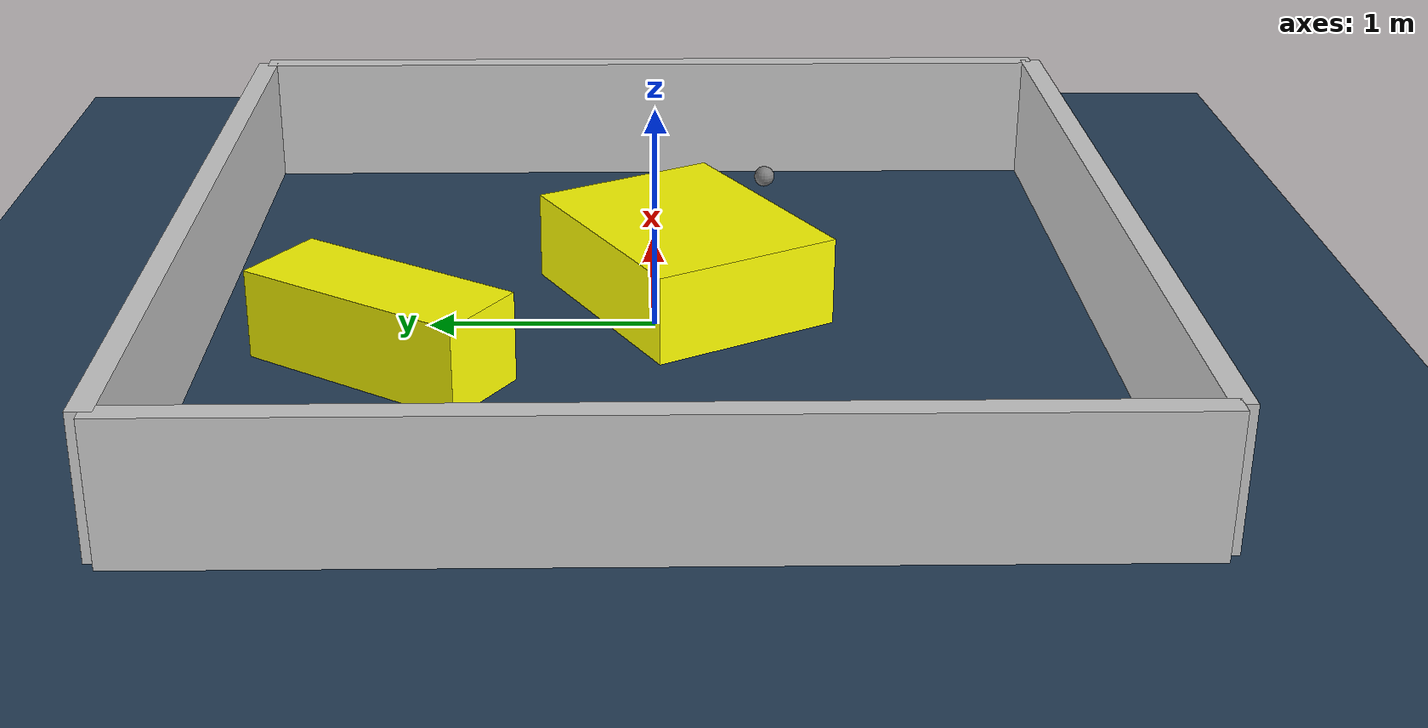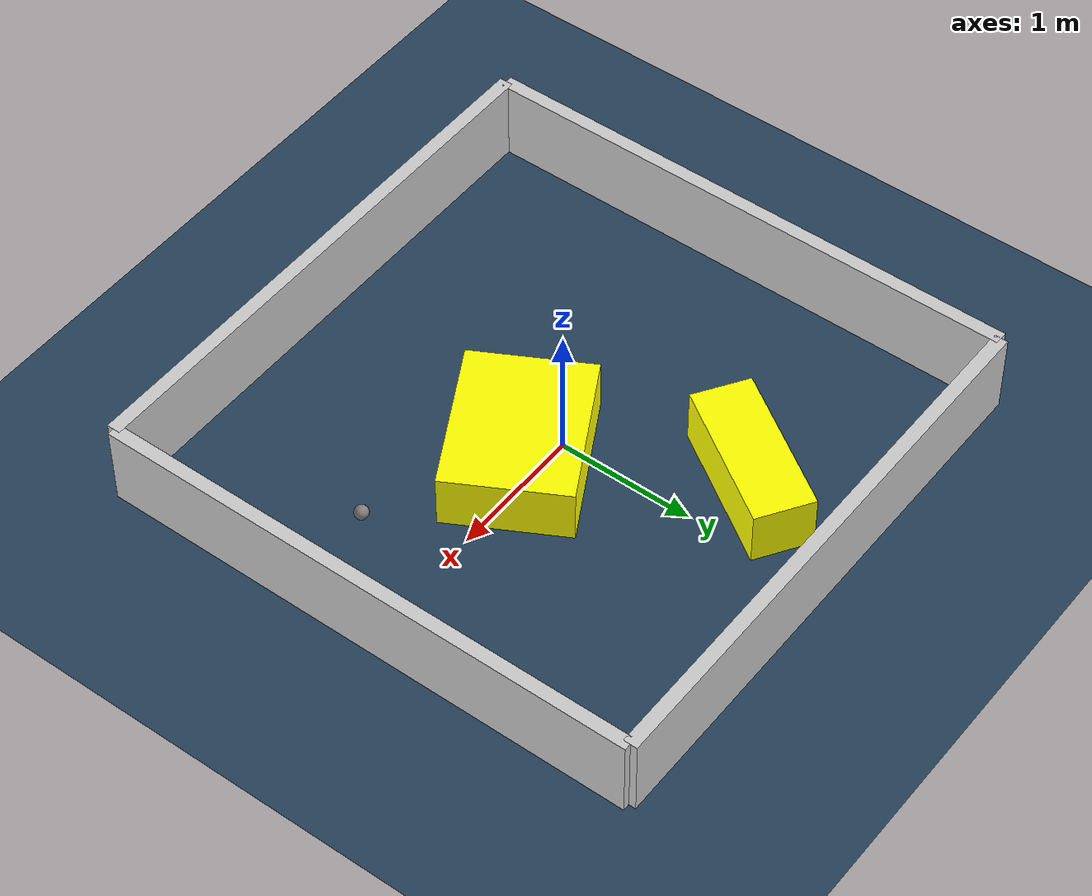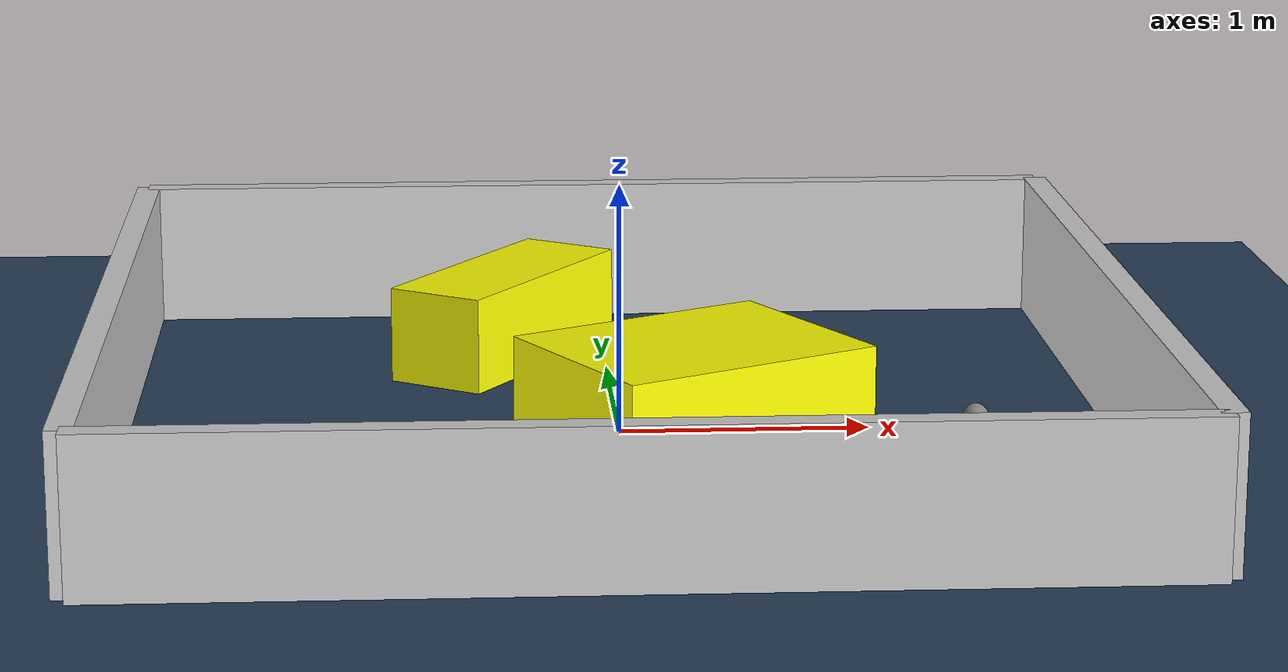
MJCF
<?xml version="1.0" ?>
<mujoco model="generated_environment">
  <option timestep="0.01" integrator="RK4" cone="elliptic"/>
  <default>
    <geom density="1"/>
  </default>
  <asset>
    <texture builtin="gradient" height="3072" rgb1="0.3 0.5 0.7" rgb2="0 0 0" type="skybox" width="512"/>
    <texture builtin="checker" height="300" mark="edge" markrgb="0.8 0.8 0.8" name="groundplane" rgb1="0.2 0.3 0.4" rgb2="0.1 0.2 0.3" type="2d" width="300"/>
    <material name="groundplane" reflectance="0.2" texrepeat="5 5" texture="groundplane" texuniform="true"/>
    <material name="robot" rgba="0.0 1.0 0.0 1"/>
  </asset>
  <worldbody>
    <light dir="0 0 -1" directional="true" pos="0 0 1.5"/>
    <geom condim="4" friction="1.0 0.005 0.001" material="groundplane" name="floor" size="0 0 0.05" type="plane"/>
    <body name="walls">
      <geom name="wall_1" condim="4" pos="-2.0 0.0 0.3" rgba="0.800000011920929 0.800000011920929 0.800000011920929 1.0" size="0.05 2.0 0.3" type="box"/>
      <geom name="wall_2" condim="4" pos="2.0 0.0 0.3" rgba="0.800000011920929 0.800000011920929 0.800000011920929 1.0" size="0.05 2.0 0.3" type="box"/>
      <geom name="wall_3" condim="4" pos="0.0 -2.0 0.3" rgba="0.800000011920929 0.800000011920929 0.800000011920929 1.0" size="2.0 0.05 0.3" type="box"/>
      <geom name="wall_4" condim="4" pos="0.0 2.0 0.3" rgba="0.800000011920929 0.800000011920929 0.800000011920929 1.0" size="2.0 0.05 0.3" type="box"/>
    </body>
    <body name="robot">
      <joint name="joint_x" type="slide" pos="0 0 0" axis="1 0 0"/>
      <joint name="joint_y" type="slide" pos="0 0 0" axis="0 1 0"/>
      <geom name="robot" type="sphere" pos="1.3394046193830973 -0.5660714402840461 0.2" size="0.05" mass="5." friction="1.0 0.005 0.0001" condim="4"/>
      <site name="sensor_ball"/>
    </body>
    <body name="obstacle_1_movable">
      <geom name="obstacle_1_movable" condim="4" pos="0.28637836395865746 -0.13067727694484654 0.2" euler="0 0 208.71895816069616" friction="1.0 0.005 0.001" rgba="1 1 0 1" size="0.5635421184678167 0.4430894335314347 0.2" type="box" mass="0.1"/>
      <joint type="free"/>
    </body>
    <body name="obstacle_2_movable">
      <geom name="obstacle_2_movable" condim="4" pos="-0.4304221172361511 1.1699233316195858 0.2" euler="0 0 146.78324904515347" friction="1.0 0.005 0.001" rgba="1 1 0 1" size="0.21559640900641447 0.5491345094629231 0.2" type="box" mass="0.1"/>
      <joint type="free"/>
    </body>
  </worldbody>
  <actuator>
    <motor name="actuator_x" joint="joint_x" gear="1" ctrlrange="-1 1"/>
    <motor name="actuator_y" joint="joint_y" gear="1" ctrlrange="-1 1"/>
  </actuator>
</mujoco>
